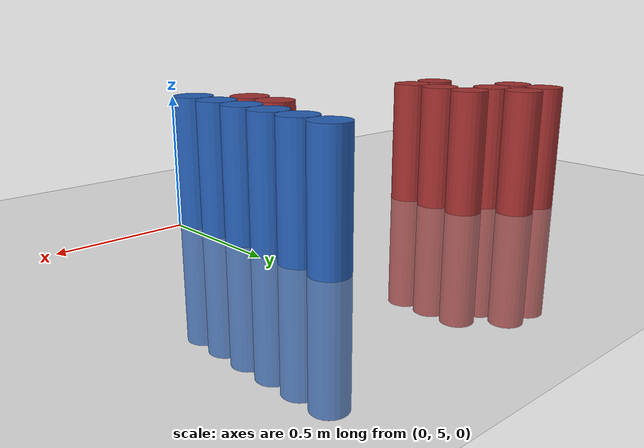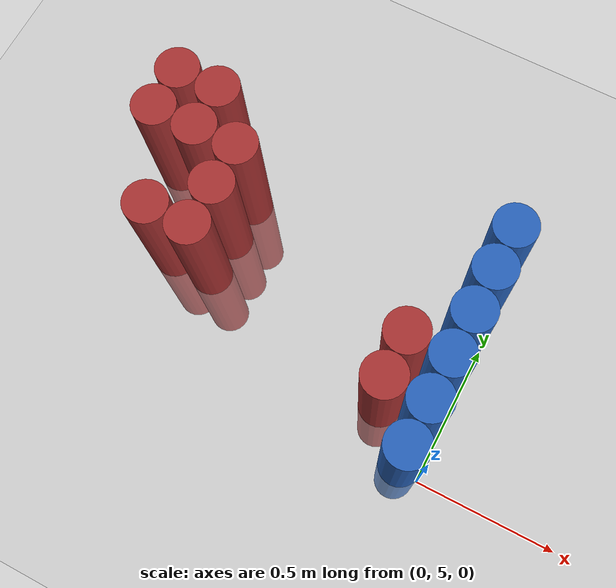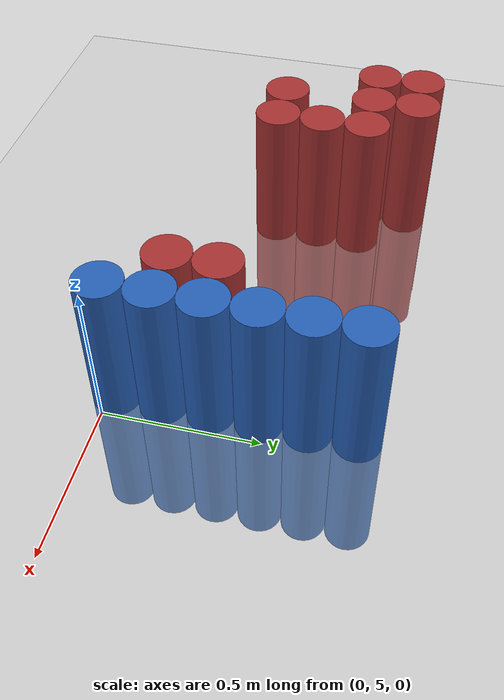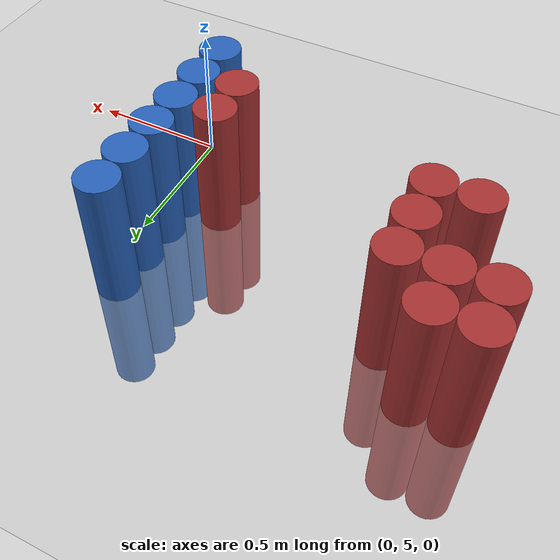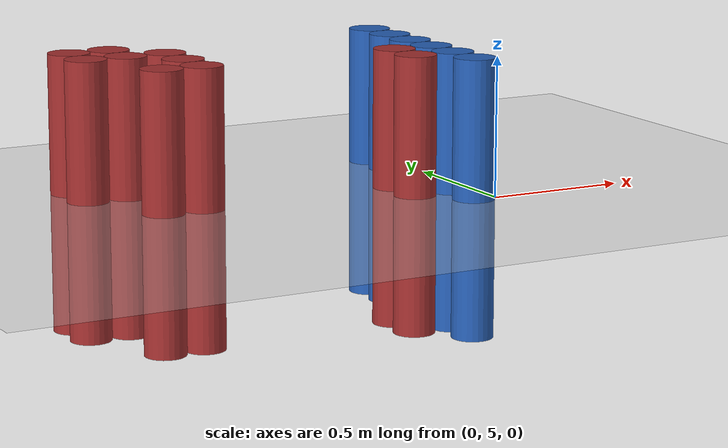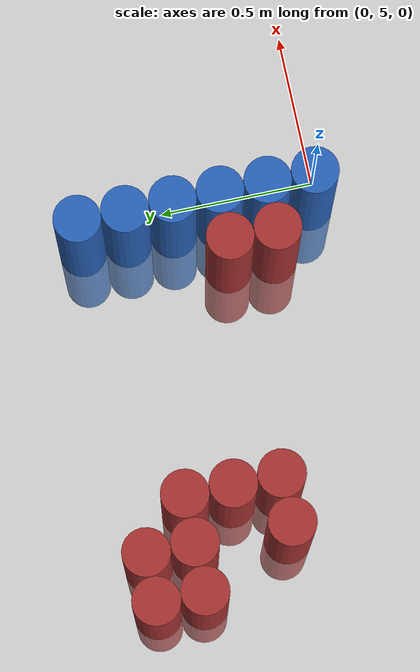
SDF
<sdf version="1.6">
 <world name="default">
  <model name="ground_plane">
   <static>1</static>
   <link name="link">
    <collision name="collision">
     <geometry><plane><normal>0 0 1</normal><size>100 100</size></plane></geometry>
     <surface><friction><ode><mu>100</mu><mu2>50</mu2></ode></friction></surface>
    </collision>
    <visual name="visual">
     <cast_shadows>0</cast_shadows>
     <geometry><plane><normal>0 0 1</normal><size>100 100</size></plane></geometry>
     <material>
      <script><uri>file://media/materials/scripts/gazebo.material</uri><name>Gazebo/Grey</name></script>
     </material>
    </visual>
   </link>
  </model>
  <model name="unit_cylinder_94">
   <static>1</static>
   <pose>-0.075000 5.025000 0.000000 0.000000 0.000000 0.000000</pose>
   <link name="link">
    <inertial>
     <mass>1</mass>
     <inertia><ixx>0.145833</ixx><ixy>0</ixy><ixz>0</ixz><iyy>0.145833</iyy><iyz>0</iyz><izz>0.125</izz></inertia>
    </inertial>
    <collision name="collision">
     <geometry><cylinder><radius>0.075000</radius><length>1</length></cylinder></geometry>
    </collision>
    <visual name="visual">
     <geometry><cylinder><radius>0.075000</radius><length>1</length></cylinder></geometry>
     <material>
      <ambient>0.152000 0.379000 0.720000 1</ambient>
      <diffuse>0.152000 0.379000 0.720000 1</diffuse>
     </material>
     <material>
      <script><name>Gazebo/Grey</name><uri>file://media/materials/scripts/gazebo.material</uri></script>
     </material>
    </visual>
   </link>
  </model>
  <model name="unit_cylinder_203">
   <static>1</static>
   <pose>-1.275000 5.625000 0.000000 0.000000 0.000000 0.000000</pose>
   <link name="link">
    <inertial>
     <mass>1</mass>
     <inertia><ixx>0.145833</ixx><ixy>0</ixy><ixz>0</ixz><iyy>0.145833</iyy><iyz>0</iyz><izz>0.125</izz></inertia>
    </inertial>
    <collision name="collision">
     <geometry><cylinder><radius>0.075000</radius><length>1</length></cylinder></geometry>
    </collision>
    <visual name="visual">
     <geometry><cylinder><radius>0.075000</radius><length>1</length></cylinder></geometry>
     <material>
      <ambient>0.648000 0.192000 0.192000 1</ambient>
      <diffuse>0.648000 0.192000 0.192000 1</diffuse>
     </material>
     <material>
      <script><name>Gazebo/Grey</name><uri>file://media/materials/scripts/gazebo.material</uri></script>
     </material>
    </visual>
   </link>
  </model>
  <model name="unit_cylinder_204">
   <static>1</static>
   <pose>-1.275000 5.775000 0.000000 0.000000 0.000000 0.000000</pose>
   <link name="link">
    <inertial>
     <mass>1</mass>
     <inertia><ixx>0.145833</ixx><ixy>0</ixy><ixz>0</ixz><iyy>0.145833</iyy><iyz>0</iyz><izz>0.125</izz></inertia>
    </inertial>
    <collision name="collision">
     <geometry><cylinder><radius>0.075000</radius><length>1</length></cylinder></geometry>
    </collision>
    <visual name="visual">
     <geometry><cylinder><radius>0.075000</radius><length>1</length></cylinder></geometry>
     <material>
      <ambient>0.648000 0.192000 0.192000 1</ambient>
      <diffuse>0.648000 0.192000 0.192000 1</diffuse>
     </material>
     <material>
      <script><name>Gazebo/Grey</name><uri>file://media/materials/scripts/gazebo.material</uri></script>
     </material>
    </visual>
   </link>
  </model>
  <model name="unit_cylinder_205">
   <static>1</static>
   <pose>-1.125000 5.325000 0.000000 0.000000 0.000000 0.000000</pose>
   <link name="link">
    <inertial>
     <mass>1</mass>
     <inertia><ixx>0.145833</ixx><ixy>0</ixy><ixz>0</ixz><iyy>0.145833</iyy><iyz>0</iyz><izz>0.125</izz></inertia>
    </inertial>
    <collision name="collision">
     <geometry><cylinder><radius>0.075000</radius><length>1</length></cylinder></geometry>
    </collision>
    <visual name="visual">
     <geometry><cylinder><radius>0.075000</radius><length>1</length></cylinder></geometry>
     <material>
      <ambient>0.648000 0.192000 0.192000 1</ambient>
      <diffuse>0.648000 0.192000 0.192000 1</diffuse>
     </material>
     <material>
      <script><name>Gazebo/Grey</name><uri>file://media/materials/scripts/gazebo.material</uri></script>
     </material>
    </visual>
   </link>
  </model>
  <model name="unit_cylinder_206">
   <static>1</static>
   <pose>-1.125000 5.625000 0.000000 0.000000 0.000000 0.000000</pose>
   <link name="link">
    <inertial>
     <mass>1</mass>
     <inertia><ixx>0.145833</ixx><ixy>0</ixy><ixz>0</ixz><iyy>0.145833</iyy><iyz>0</iyz><izz>0.125</izz></inertia>
    </inertial>
    <collision name="collision">
     <geometry><cylinder><radius>0.075000</radius><length>1</length></cylinder></geometry>
    </collision>
    <visual name="visual">
     <geometry><cylinder><radius>0.075000</radius><length>1</length></cylinder></geometry>
     <material>
      <ambient>0.648000 0.192000 0.192000 1</ambient>
      <diffuse>0.648000 0.192000 0.192000 1</diffuse>
     </material>
     <material>
      <script><name>Gazebo/Grey</name><uri>file://media/materials/scripts/gazebo.material</uri></script>
     </material>
    </visual>
   </link>
  </model>
  <model name="unit_cylinder_207">
   <static>1</static>
   <pose>-1.125000 5.775000 0.000000 0.000000 0.000000 0.000000</pose>
   <link name="link">
    <inertial>
     <mass>1</mass>
     <inertia><ixx>0.145833</ixx><ixy>0</ixy><ixz>0</ixz><iyy>0.145833</iyy><iyz>0</iyz><izz>0.125</izz></inertia>
    </inertial>
    <collision name="collision">
     <geometry><cylinder><radius>0.075000</radius><length>1</length></cylinder></geometry>
    </collision>
    <visual name="visual">
     <geometry><cylinder><radius>0.075000</radius><length>1</length></cylinder></geometry>
     <material>
      <ambient>0.648000 0.192000 0.192000 1</ambient>
      <diffuse>0.648000 0.192000 0.192000 1</diffuse>
     </material>
     <material>
      <script><name>Gazebo/Grey</name><uri>file://media/materials/scripts/gazebo.material</uri></script>
     </material>
    </visual>
   </link>
  </model>
  <model name="unit_cylinder_209">
   <static>1</static>
   <pose>-0.975000 5.325000 0.000000 0.000000 0.000000 0.000000</pose>
   <link name="link">
    <inertial>
     <mass>1</mass>
     <inertia><ixx>0.145833</ixx><ixy>0</ixy><ixz>0</ixz><iyy>0.145833</iyy><iyz>0</iyz><izz>0.125</izz></inertia>
    </inertial>
    <collision name="collision">
     <geometry><cylinder><radius>0.075000</radius><length>1</length></cylinder></geometry>
    </collision>
    <visual name="visual">
     <geometry><cylinder><radius>0.075000</radius><length>1</length></cylinder></geometry>
     <material>
      <ambient>0.648000 0.192000 0.192000 1</ambient>
      <diffuse>0.648000 0.192000 0.192000 1</diffuse>
     </material>
     <material>
      <script><name>Gazebo/Grey</name><uri>file://media/materials/scripts/gazebo.material</uri></script>
     </material>
    </visual>
   </link>
  </model>
  <model name="unit_cylinder_210">
   <static>1</static>
   <pose>-0.975000 5.475000 0.000000 0.000000 0.000000 0.000000</pose>
   <link name="link">
    <inertial>
     <mass>1</mass>
     <inertia><ixx>0.145833</ixx><ixy>0</ixy><ixz>0</ixz><iyy>0.145833</iyy><iyz>0</iyz><izz>0.125</izz></inertia>
    </inertial>
    <collision name="collision">
     <geometry><cylinder><radius>0.075000</radius><length>1</length></cylinder></geometry>
    </collision>
    <visual name="visual">
     <geometry><cylinder><radius>0.075000</radius><length>1</length></cylinder></geometry>
     <material>
      <ambient>0.648000 0.192000 0.192000 1</ambient>
      <diffuse>0.648000 0.192000 0.192000 1</diffuse>
     </material>
     <material>
      <script><name>Gazebo/Grey</name><uri>file://media/materials/scripts/gazebo.material</uri></script>
     </material>
    </visual>
   </link>
  </model>
  <model name="unit_cylinder_211">
   <static>1</static>
   <pose>-0.975000 5.625000 0.000000 0.000000 0.000000 0.000000</pose>
   <link name="link">
    <inertial>
     <mass>1</mass>
     <inertia><ixx>0.145833</ixx><ixy>0</ixy><ixz>0</ixz><iyy>0.145833</iyy><iyz>0</iyz><izz>0.125</izz></inertia>
    </inertial>
    <collision name="collision">
     <geometry><cylinder><radius>0.075000</radius><length>1</length></cylinder></geometry>
    </collision>
    <visual name="visual">
     <geometry><cylinder><radius>0.075000</radius><length>1</length></cylinder></geometry>
     <material>
      <ambient>0.648000 0.192000 0.192000 1</ambient>
      <diffuse>0.648000 0.192000 0.192000 1</diffuse>
     </material>
     <material>
      <script><name>Gazebo/Grey</name><uri>file://media/materials/scripts/gazebo.material</uri></script>
     </material>
    </visual>
   </link>
  </model>
  <model name="unit_cylinder_216">
   <static>1</static>
   <pose>-0.225000 5.175000 0.000000 0.000000 0.000000 0.000000</pose>
   <link name="link">
    <inertial>
     <mass>1</mass>
     <inertia><ixx>0.145833</ixx><ixy>0</ixy><ixz>0</ixz><iyy>0.145833</iyy><iyz>0</iyz><izz>0.125</izz></inertia>
    </inertial>
    <collision name="collision">
     <geometry><cylinder><radius>0.075000</radius><length>1</length></cylinder></geometry>
    </collision>
    <visual name="visual">
     <geometry><cylinder><radius>0.075000</radius><length>1</length></cylinder></geometry>
     <material>
      <ambient>0.648000 0.192000 0.192000 1</ambient>
      <diffuse>0.648000 0.192000 0.192000 1</diffuse>
     </material>
     <material>
      <script><name>Gazebo/Grey</name><uri>file://media/materials/scripts/gazebo.material</uri></script>
     </material>
    </visual>
   </link>
  </model>
  <model name="unit_cylinder_217">
   <static>1</static>
   <pose>-0.225000 5.325000 0.000000 0.000000 0.000000 0.000000</pose>
   <link name="link">
    <inertial>
     <mass>1</mass>
     <inertia><ixx>0.145833</ixx><ixy>0</ixy><ixz>0</ixz><iyy>0.145833</iyy><iyz>0</iyz><izz>0.125</izz></inertia>
    </inertial>
    <collision name="collision">
     <geometry><cylinder><radius>0.075000</radius><length>1</length></cylinder></geometry>
    </collision>
    <visual name="visual">
     <geometry><cylinder><radius>0.075000</radius><length>1</length></cylinder></geometry>
     <material>
      <ambient>0.648000 0.192000 0.192000 1</ambient>
      <diffuse>0.648000 0.192000 0.192000 1</diffuse>
     </material>
     <material>
      <script><name>Gazebo/Grey</name><uri>file://media/materials/scripts/gazebo.material</uri></script>
     </material>
    </visual>
   </link>
  </model>
  <model name="unit_cylinder_224">
   <static>1</static>
   <pose>-0.075000 5.175000 0.000000 0.000000 0.000000 0.000000</pose>
   <link name="link">
    <inertial>
     <mass>1</mass>
     <inertia><ixx>0.145833</ixx><ixy>0</ixy><ixz>0</ixz><iyy>0.145833</iyy><iyz>0</iyz><izz>0.125</izz></inertia>
    </inertial>
    <collision name="collision">
     <geometry><cylinder><radius>0.075000</radius><length>1</length></cylinder></geometry>
    </collision>
    <visual name="visual">
     <geometry><cylinder><radius>0.075000</radius><length>1</length></cylinder></geometry>
     <material>
      <ambient>0.152000 0.379000 0.720000 1</ambient>
      <diffuse>0.152000 0.379000 0.720000 1</diffuse>
     </material>
     <material>
      <script><name>Gazebo/Grey</name><uri>file://media/materials/scripts/gazebo.material</uri></script>
     </material>
    </visual>
   </link>
  </model>
  <model name="unit_cylinder_225">
   <static>1</static>
   <pose>-0.075000 5.325000 0.000000 0.000000 0.000000 0.000000</pose>
   <link name="link">
    <inertial>
     <mass>1</mass>
     <inertia><ixx>0.145833</ixx><ixy>0</ixy><ixz>0</ixz><iyy>0.145833</iyy><iyz>0</iyz><izz>0.125</izz></inertia>
    </inertial>
    <collision name="collision">
     <geometry><cylinder><radius>0.075000</radius><length>1</length></cylinder></geometry>
    </collision>
    <visual name="visual">
     <geometry><cylinder><radius>0.075000</radius><length>1</length></cylinder></geometry>
     <material>
      <ambient>0.152000 0.379000 0.720000 1</ambient>
      <diffuse>0.152000 0.379000 0.720000 1</diffuse>
     </material>
     <material>
      <script><name>Gazebo/Grey</name><uri>file://media/materials/scripts/gazebo.material</uri></script>
     </material>
    </visual>
   </link>
  </model>
  <model name="unit_cylinder_226">
   <static>1</static>
   <pose>-0.075000 5.475000 0.000000 0.000000 0.000000 0.000000</pose>
   <link name="link">
    <inertial>
     <mass>1</mass>
     <inertia><ixx>0.145833</ixx><ixy>0</ixy><ixz>0</ixz><iyy>0.145833</iyy><iyz>0</iyz><izz>0.125</izz></inertia>
    </inertial>
    <collision name="collision">
     <geometry><cylinder><radius>0.075000</radius><length>1</length></cylinder></geometry>
    </collision>
    <visual name="visual">
     <geometry><cylinder><radius>0.075000</radius><length>1</length></cylinder></geometry>
     <material>
      <ambient>0.152000 0.379000 0.720000 1</ambient>
      <diffuse>0.152000 0.379000 0.720000 1</diffuse>
     </material>
     <material>
      <script><name>Gazebo/Grey</name><uri>file://media/materials/scripts/gazebo.material</uri></script>
     </material>
    </visual>
   </link>
  </model>
  <model name="unit_cylinder_227">
   <static>1</static>
   <pose>-0.075000 5.625000 0.000000 0.000000 0.000000 0.000000</pose>
   <link name="link">
    <inertial>
     <mass>1</mass>
     <inertia><ixx>0.145833</ixx><ixy>0</ixy><ixz>0</ixz><iyy>0.145833</iyy><iyz>0</iyz><izz>0.125</izz></inertia>
    </inertial>
    <collision name="collision">
     <geometry><cylinder><radius>0.075000</radius><length>1</length></cylinder></geometry>
    </collision>
    <visual name="visual">
     <geometry><cylinder><radius>0.075000</radius><length>1</length></cylinder></geometry>
     <material>
      <ambient>0.152000 0.379000 0.720000 1</ambient>
      <diffuse>0.152000 0.379000 0.720000 1</diffuse>
     </material>
     <material>
      <script><name>Gazebo/Grey</name><uri>file://media/materials/scripts/gazebo.material</uri></script>
     </material>
    </visual>
   </link>
  </model>
  <model name="unit_cylinder_228">
   <static>1</static>
   <pose>-0.075000 5.775000 0.000000 0.000000 0.000000 0.000000</pose>
   <link name="link">
    <inertial>
     <mass>1</mass>
     <inertia><ixx>0.145833</ixx><ixy>0</ixy><ixz>0</ixz><iyy>0.145833</iyy><iyz>0</iyz><izz>0.125</izz></inertia>
    </inertial>
    <collision name="collision">
     <geometry><cylinder><radius>0.075000</radius><length>1</length></cylinder></geometry>
    </collision>
    <visual name="visual">
     <geometry><cylinder><radius>0.075000</radius><length>1</length></cylinder></geometry>
     <material>
      <ambient>0.152000 0.379000 0.720000 1</ambient>
      <diffuse>0.152000 0.379000 0.720000 1</diffuse>
     </material>
     <material>
      <script><name>Gazebo/Grey</name><uri>file://media/materials/scripts/gazebo.material</uri></script>
     </material>
    </visual>
   </link>
  </model>
 </world>
</sdf>
